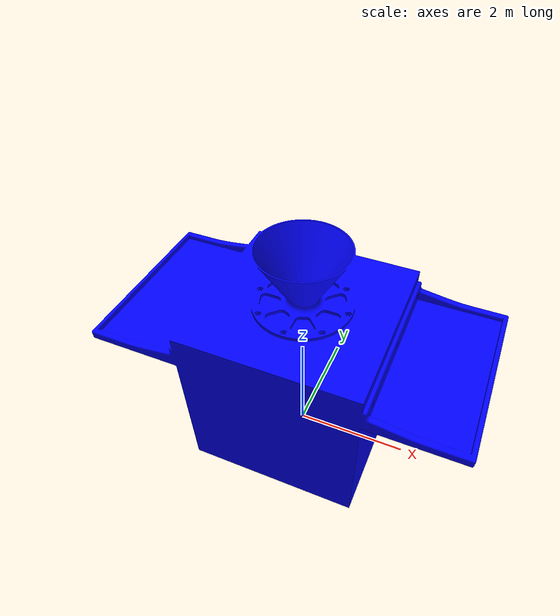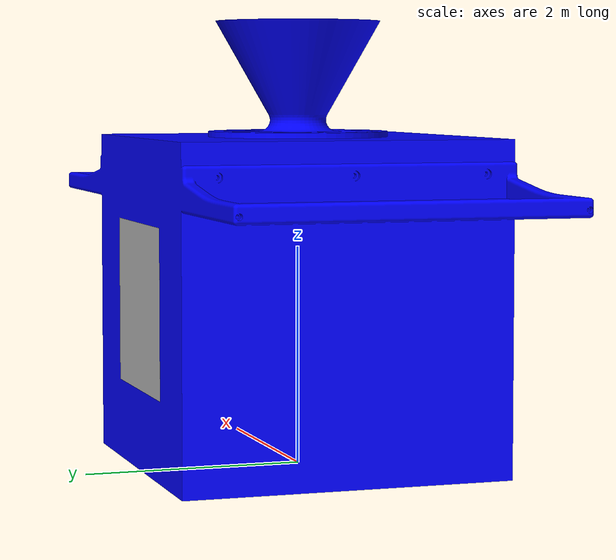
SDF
<?xml version='1.0'?>
<sdf version="1.7">
  <model name="Satellite">
    <!-- Dummy Root Link -->
    <link name="sat_base_link">
      <inertial>
        <mass>0.001</mass>
        <inertia>
          <ixx>0.001</ixx>
          <ixy>0</ixy>
          <ixz>0</ixz>
          <iyy>0.001</iyy>
          <iyz>0</iyz>
          <izz>0.001</izz>
        </inertia>
      </inertial>
    </link>

    <!-- Satellite Body -->
    <link name="sat_body">
      <inertial>
        <mass>10</mass>
        <inertia>
          <ixx>0.1</ixx>
          <ixy>0</ixy>
          <ixz>0</ixz>
          <iyy>0.1</iyy>
          <iyz>0</iyz>
          <izz>0.1</izz>
        </inertia>
      </inertial>

      <visual name="visual">
        <geometry>
          <mesh>
            <uri>package://home/skaveendya/lina_ws/src/satellite_description/meshes/Cube_Deko_Features.stl</uri>
            <scale>0.01 0.01 0.01</scale>
          </mesh>
        </geometry>
        <material>
          <ambient>0.0 0.0 1.0 1.0</ambient>
          <diffuse>0.0 0.0 1.0 1.0</diffuse>
          <specular>0.1 0.1 0.1 1.0</specular>
        </material>
      </visual>

      <collision name="collision">
        <geometry>
          <mesh>
            <uri>package://home/skaveendya/lina_ws/src/satellite_description/meshes/Cube_Deko_Features.stl</uri>
            <scale>0.005 0.005 0.005</scale>
          </mesh>
        </geometry>
      </collision>
    </link>

    <!-- Fixed joint between base and satellite body -->
    <joint name="base_to_sat_body" type="fixed">
      <parent>sat_base_link</parent>
      <child>sat_body</child>
    </joint>

    <!-- AprilTag Link -->
    <link name="apriltag_36_11_00">
      <pose relative_to="sat_body">0 1.5 1.5 1.5708 0 0</pose>  <!--pose to attach on front face --> <!-- PUT angles in Rad-->
      <inertial>
        <mass>0.001</mass>
        <inertia>
          <ixx>0.00001</ixx>
          <iyy>0.00001</iyy>
          <izz>0.00002</izz>
          <ixy>0.0</ixy>
          <ixz>0.0</ixz>
          <iyz>0.0</iyz>
        </inertia>
      </inertial>

      <!-- AprilTag Collision -->
      <collision name="apriltag_collision">
        <geometry>
          <box>
            <size>0.0625 0.0625 0.01</size>
          </box>
        </geometry>
      </collision>

      <!-- AprilTag Visual -->
      <visual name="apriltag_visual">
        <geometry>
          <mesh>
            <uri>package://home/skaveendya/lina_ws/src/satellite_description/markers/apriltag_36_11_00.dae</uri>
            <scale>15.1 15.1 15.1</scale>  <!-- Fixed scale (removed extra value) -->
          </mesh>
        </geometry>
      </visual>
    </link>

    <!-- Fixed Joint to Attach AprilTag to Satellite -->
    <joint name="sat_body_to_apriltag" type="fixed">
      <pose relative_to='sat_body'/>
      <parent>sat_body</parent>
      <child>apriltag_36_11_00</child>
    </joint>

    <!-- Gazebo Plugins -->
    <plugin filename="libgz-sim-velocity-control-system.so" name="gz::sim::systems::VelocityControl">
      <topic>cmd_vel</topic>
      <entity>sat_base_link</entity>
    </plugin>

    <plugin filename="libgz-sim-pose-publisher-system.so" name="gz::sim::systems::PosePublisher">
      <publish_nested_model_pose>true</publish_nested_model_pose>
      <update_frequency>5</update_frequency>
    </plugin>

    <plugin filename="libignition-gazebo-odometry-publisher-system.so" name="ignition::gazebo::systems::OdometryPublisher">
      <odom_frame>satellite/odom</odom_frame>
      <robot_base_frame>satellite/sat_body</robot_base_frame>
      <odom_publish_frequency>1</odom_publish_frequency>
      <odom_covariance_topic>/model/satellite/odometry_with_covariance</odom_covariance_topic>
      <dimensions>3</dimensions>
      <gaussian_noise>0.1</gaussian_noise>
    </plugin>

  </model>
</sdf>
